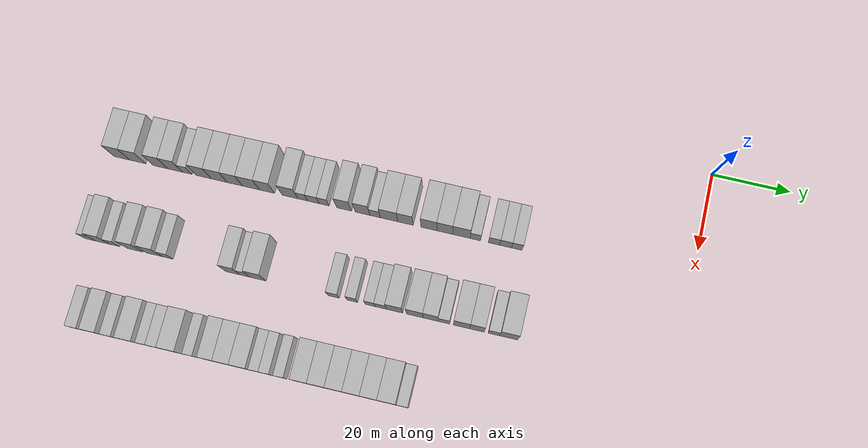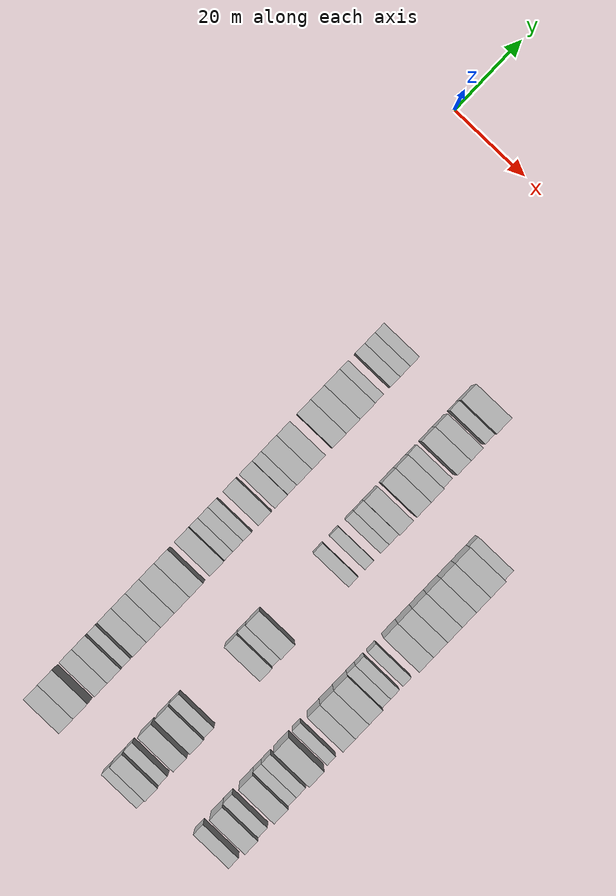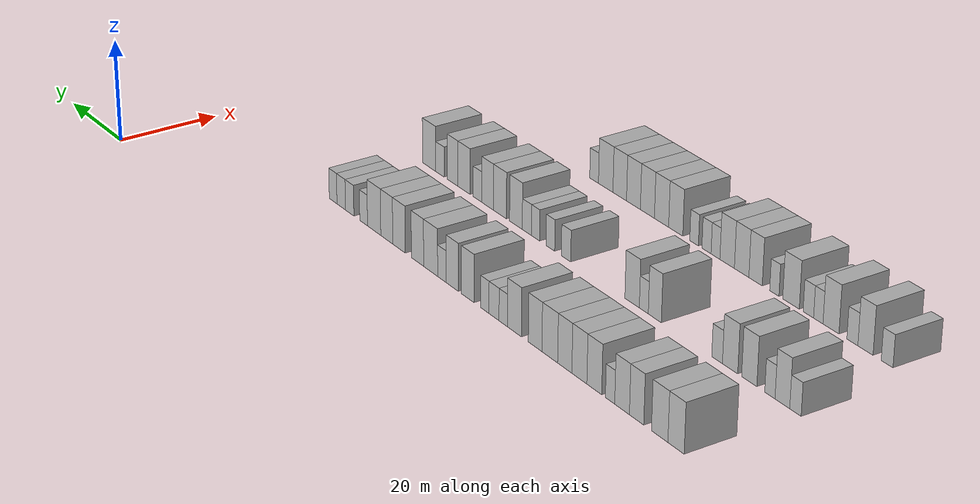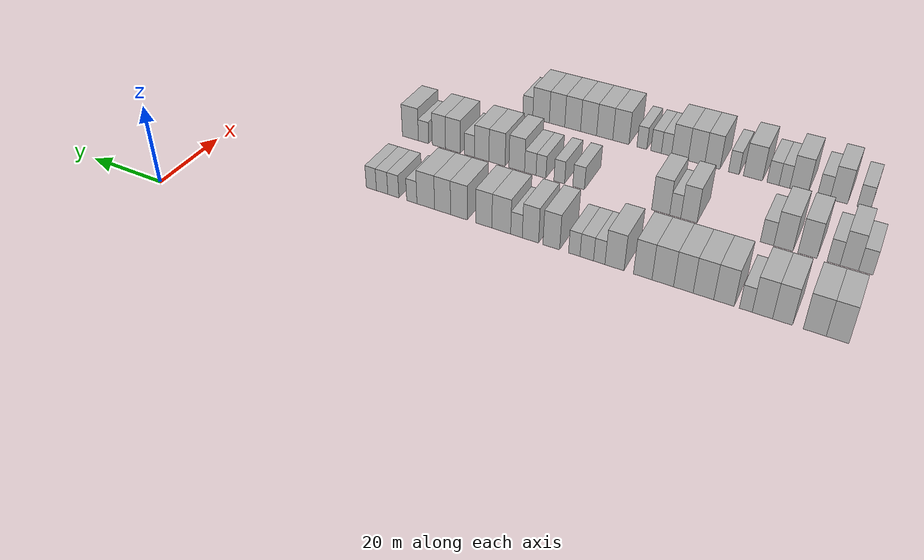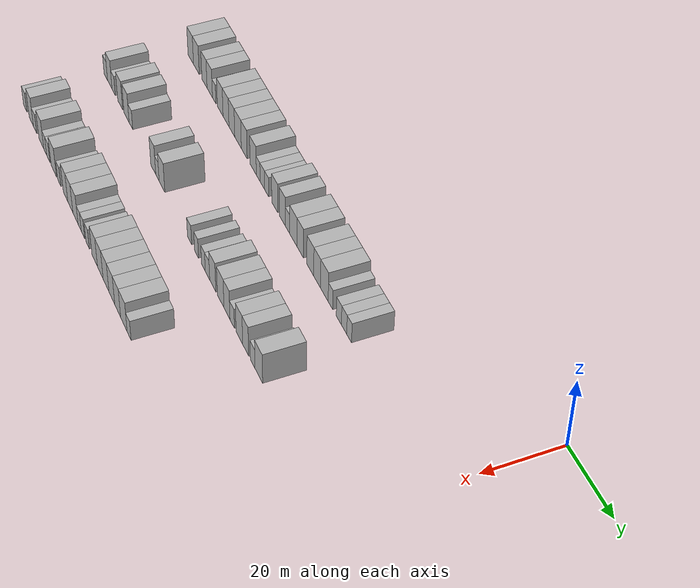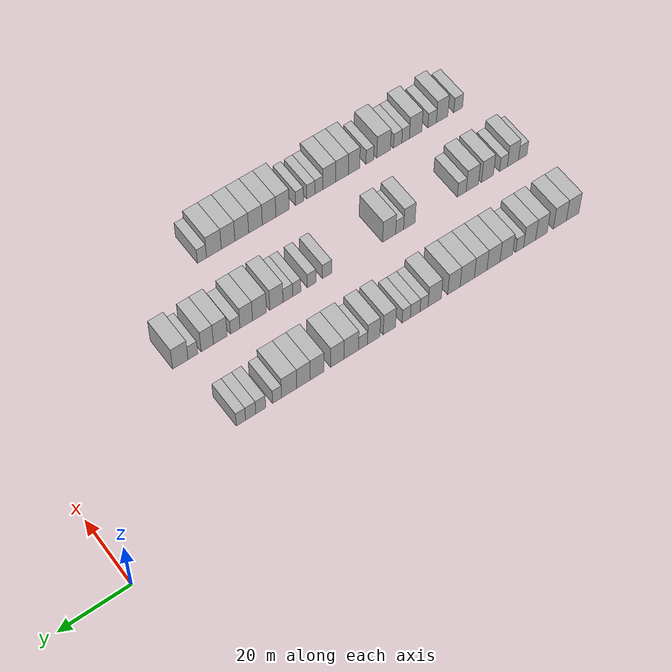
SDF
<sdf version="1.6">
 <world name="default">
  <model name="building_26">
   <static>1</static>
   <pose>25.0000 -146.1814 0 0.000000 0.000000 0.000000</pose>
   <link name="link">
    <pose>0 0 4.50 0 0 0</pose>
    <collision name="collision"><geometry><box><size>10.0000 4.1234 9.0000</size></box></geometry></collision>
    <visual name="visual">
     <cast_shadows>0</cast_shadows>
     <geometry><box><size>10.0000 4.1234 9.0000</size></box></geometry>
     <material>
      <script>
       <uri>model://HANNAS_wall/materials/scripts</uri>
       <uri>model://HANNAS_wall/materials/textures</uri>
       <name>vrc/HANNAS_wall</name>
      </script>
     </material>
    </visual>
   </link>
  </model>
  <model name="building_27">
   <static>1</static>
   <pose>25.0000 -142.0024 0 0.000000 0.000000 0.000000</pose>
   <link name="link">
    <pose>0 0 4.50 0 0 0</pose>
    <collision name="collision"><geometry><box><size>10.0000 4.2346 9.0000</size></box></geometry></collision>
    <visual name="visual">
     <cast_shadows>0</cast_shadows>
     <geometry><box><size>10.0000 4.2346 9.0000</size></box></geometry>
     <material>
      <script>
       <uri>model://HANNAS_wall/materials/scripts</uri>
       <uri>model://HANNAS_wall/materials/textures</uri>
       <name>vrc/HANNAS_wall</name>
      </script>
     </material>
    </visual>
   </link>
  </model>
  <model name="building_28">
   <static>1</static>
   <pose>25.0000 -136.0054 0 0.000000 0.000000 0.000000</pose>
   <link name="link">
    <pose>0 0 4.50 0 0 0</pose>
    <collision name="collision"><geometry><box><size>10.0000 3.7594 9.0000</size></box></geometry></collision>
    <visual name="visual">
     <cast_shadows>0</cast_shadows>
     <geometry><box><size>10.0000 3.7594 9.0000</size></box></geometry>
     <material>
      <script>
       <uri>model://HANNAS_wall/materials/scripts</uri>
       <uri>model://HANNAS_wall/materials/textures</uri>
       <name>vrc/HANNAS_wall</name>
      </script>
     </material>
    </visual>
   </link>
  </model>
  <model name="building_29">
   <static>1</static>
   <pose>25.0000 -132.1710 0 0.000000 0.000000 0.000000</pose>
   <link name="link">
    <pose>0 0 4.50 0 0 0</pose>
    <collision name="collision"><geometry><box><size>10.0000 3.9094 9.0000</size></box></geometry></collision>
    <visual name="visual">
     <cast_shadows>0</cast_shadows>
     <geometry><box><size>10.0000 3.9094 9.0000</size></box></geometry>
     <material>
      <script>
       <uri>model://HANNAS_wall/materials/scripts</uri>
       <uri>model://HANNAS_wall/materials/textures</uri>
       <name>vrc/HANNAS_wall</name>
      </script>
     </material>
    </visual>
   </link>
  </model>
  <model name="building_30">
   <static>1</static>
   <pose>25.0000 -128.9647 0 0.000000 0.000000 0.000000</pose>
   <link name="link">
    <pose>0 0 3.00 0 0 0</pose>
    <collision name="collision"><geometry><box><size>10.0000 2.5033 6.0000</size></box></geometry></collision>
    <visual name="visual">
     <cast_shadows>0</cast_shadows>
     <geometry><box><size>10.0000 2.5033 6.0000</size></box></geometry>
     <material>
      <script>
       <uri>model://HANNAS_wall/materials/scripts</uri>
       <uri>model://HANNAS_wall/materials/textures</uri>
       <name>vrc/HANNAS_wall</name>
      </script>
     </material>
    </visual>
   </link>
  </model>
  <model name="building_31">
   <static>1</static>
   <pose>25.0000 -124.6925 0 0.000000 0.000000 0.000000</pose>
   <link name="link">
    <pose>0 0 4.50 0 0 0</pose>
    <collision name="collision"><geometry><box><size>10.0000 4.0411 9.0000</size></box></geometry></collision>
    <visual name="visual">
     <cast_shadows>0</cast_shadows>
     <geometry><box><size>10.0000 4.0411 9.0000</size></box></geometry>
     <material>
      <script>
       <uri>model://HANNAS_wall/materials/scripts</uri>
       <uri>model://HANNAS_wall/materials/textures</uri>
       <name>vrc/HANNAS_wall</name>
      </script>
     </material>
    </visual>
   </link>
  </model>
  <model name="building_32">
   <static>1</static>
   <pose>25.0000 -120.5964 0 0.000000 0.000000 0.000000</pose>
   <link name="link">
    <pose>0 0 4.50 0 0 0</pose>
    <collision name="collision"><geometry><box><size>10.0000 4.1510 9.0000</size></box></geometry></collision>
    <visual name="visual">
     <cast_shadows>0</cast_shadows>
     <geometry><box><size>10.0000 4.1510 9.0000</size></box></geometry>
     <material>
      <script>
       <uri>model://HANNAS_wall/materials/scripts</uri>
       <uri>model://HANNAS_wall/materials/textures</uri>
       <name>vrc/HANNAS_wall</name>
      </script>
     </material>
    </visual>
   </link>
  </model>
  <model name="building_33">
   <static>1</static>
   <pose>25.0000 -116.5280 0 0.000000 0.000000 0.000000</pose>
   <link name="link">
    <pose>0 0 4.50 0 0 0</pose>
    <collision name="collision"><geometry><box><size>10.0000 3.9857 9.0000</size></box></geometry></collision>
    <visual name="visual">
     <cast_shadows>0</cast_shadows>
     <geometry><box><size>10.0000 3.9857 9.0000</size></box></geometry>
     <material>
      <script>
       <uri>model://HANNAS_wall/materials/scripts</uri>
       <uri>model://HANNAS_wall/materials/textures</uri>
       <name>vrc/HANNAS_wall</name>
      </script>
     </material>
    </visual>
   </link>
  </model>
  <model name="building_34">
   <static>1</static>
   <pose>25.0000 -112.2991 0 0.000000 0.000000 0.000000</pose>
   <link name="link">
    <pose>0 0 4.50 0 0 0</pose>
    <collision name="collision"><geometry><box><size>10.0000 4.4722 9.0000</size></box></geometry></collision>
    <visual name="visual">
     <cast_shadows>0</cast_shadows>
     <geometry><box><size>10.0000 4.4722 9.0000</size></box></geometry>
     <material>
      <script>
       <uri>model://HANNAS_wall/materials/scripts</uri>
       <uri>model://HANNAS_wall/materials/textures</uri>
       <name>vrc/HANNAS_wall</name>
      </script>
     </material>
    </visual>
   </link>
  </model>
  <model name="building_35">
   <static>1</static>
   <pose>25.0000 -108.1055 0 0.000000 0.000000 0.000000</pose>
   <link name="link">
    <pose>0 0 4.50 0 0 0</pose>
    <collision name="collision"><geometry><box><size>10.0000 3.9148 9.0000</size></box></geometry></collision>
    <visual name="visual">
     <cast_shadows>0</cast_shadows>
     <geometry><box><size>10.0000 3.9148 9.0000</size></box></geometry>
     <material>
      <script>
       <uri>model://HANNAS_wall/materials/scripts</uri>
       <uri>model://HANNAS_wall/materials/textures</uri>
       <name>vrc/HANNAS_wall</name>
      </script>
     </material>
    </visual>
   </link>
  </model>
  <model name="building_36">
   <static>1</static>
   <pose>25.0000 -102.0855 0 0.000000 0.000000 0.000000</pose>
   <link name="link">
    <pose>0 0 4.50 0 0 0</pose>
    <collision name="collision"><geometry><box><size>10.0000 4.1253 9.0000</size></box></geometry></collision>
    <visual name="visual">
     <cast_shadows>0</cast_shadows>
     <geometry><box><size>10.0000 4.1253 9.0000</size></box></geometry>
     <material>
      <script>
       <uri>model://HANNAS_wall/materials/scripts</uri>
       <uri>model://HANNAS_wall/materials/textures</uri>
       <name>vrc/HANNAS_wall</name>
      </script>
     </material>
    </visual>
   </link>
  </model>
  <model name="building_37">
   <static>1</static>
   <pose>25.0000 -98.7798 0 0.000000 0.000000 0.000000</pose>
   <link name="link">
    <pose>0 0 3.00 0 0 0</pose>
    <collision name="collision"><geometry><box><size>10.0000 2.4861 6.0000</size></box></geometry></collision>
    <visual name="visual">
     <cast_shadows>0</cast_shadows>
     <geometry><box><size>10.0000 2.4861 6.0000</size></box></geometry>
     <material>
      <script>
       <uri>model://HANNAS_wall/materials/scripts</uri>
       <uri>model://HANNAS_wall/materials/textures</uri>
       <name>vrc/HANNAS_wall</name>
      </script>
     </material>
    </visual>
   </link>
  </model>
  <model name="building_38">
   <static>1</static>
   <pose>25.0000 -96.0407 0 0.000000 0.000000 0.000000</pose>
   <link name="link">
    <pose>0 0 3.00 0 0 0</pose>
    <collision name="collision"><geometry><box><size>10.0000 2.9920 6.0000</size></box></geometry></collision>
    <visual name="visual">
     <cast_shadows>0</cast_shadows>
     <geometry><box><size>10.0000 2.9920 6.0000</size></box></geometry>
     <material>
      <script>
       <uri>model://HANNAS_wall/materials/scripts</uri>
       <uri>model://HANNAS_wall/materials/textures</uri>
       <name>vrc/HANNAS_wall</name>
      </script>
     </material>
    </visual>
   </link>
  </model>
  <model name="building_39">
   <static>1</static>
   <pose>25.0000 -93.2698 0 0.000000 0.000000 0.000000</pose>
   <link name="link">
    <pose>0 0 3.00 0 0 0</pose>
    <collision name="collision"><geometry><box><size>10.0000 2.5499 6.0000</size></box></geometry></collision>
    <visual name="visual">
     <cast_shadows>0</cast_shadows>
     <geometry><box><size>10.0000 2.5499 6.0000</size></box></geometry>
     <material>
      <script>
       <uri>model://HANNAS_wall/materials/scripts</uri>
       <uri>model://HANNAS_wall/materials/textures</uri>
       <name>vrc/HANNAS_wall</name>
      </script>
     </material>
    </visual>
   </link>
  </model>
  <model name="building_40">
   <static>1</static>
   <pose>25.0000 -88.0946 0 0.000000 0.000000 0.000000</pose>
   <link name="link">
    <pose>0 0 4.50 0 0 0</pose>
    <collision name="collision"><geometry><box><size>10.0000 3.8005 9.0000</size></box></geometry></collision>
    <visual name="visual">
     <cast_shadows>0</cast_shadows>
     <geometry><box><size>10.0000 3.8005 9.0000</size></box></geometry>
     <material>
      <script>
       <uri>model://HANNAS_wall/materials/scripts</uri>
       <uri>model://HANNAS_wall/materials/textures</uri>
       <name>vrc/HANNAS_wall</name>
      </script>
     </material>
    </visual>
   </link>
  </model>
  <model name="building_41">
   <static>1</static>
   <pose>25.0000 -83.3146 0 0.000000 0.000000 0.000000</pose>
   <link name="link">
    <pose>0 0 4.50 0 0 0</pose>
    <collision name="collision"><geometry><box><size>10.0000 3.7594 9.0000</size></box></geometry></collision>
    <visual name="visual">
     <cast_shadows>0</cast_shadows>
     <geometry><box><size>10.0000 3.7594 9.0000</size></box></geometry>
     <material>
      <script>
       <uri>model://HANNAS_wall/materials/scripts</uri>
       <uri>model://HANNAS_wall/materials/textures</uri>
       <name>vrc/HANNAS_wall</name>
      </script>
     </material>
    </visual>
   </link>
  </model>
  <model name="building_42">
   <static>1</static>
   <pose>25.0000 -80.0794 0 0.000000 0.000000 0.000000</pose>
   <link name="link">
    <pose>0 0 3.00 0 0 0</pose>
    <collision name="collision"><geometry><box><size>10.0000 2.7111 6.0000</size></box></geometry></collision>
    <visual name="visual">
     <cast_shadows>0</cast_shadows>
     <geometry><box><size>10.0000 2.7111 6.0000</size></box></geometry>
     <material>
      <script>
       <uri>model://HANNAS_wall/materials/scripts</uri>
       <uri>model://HANNAS_wall/materials/textures</uri>
       <name>vrc/HANNAS_wall</name>
      </script>
     </material>
    </visual>
   </link>
  </model>
  <model name="building_43">
   <static>1</static>
   <pose>25.0000 -76.5012 0 0.000000 0.000000 0.000000</pose>
   <link name="link">
    <pose>0 0 4.50 0 0 0</pose>
    <collision name="collision"><geometry><box><size>10.0000 4.4454 9.0000</size></box></geometry></collision>
    <visual name="visual">
     <cast_shadows>0</cast_shadows>
     <geometry><box><size>10.0000 4.4454 9.0000</size></box></geometry>
     <material>
      <script>
       <uri>model://HANNAS_wall/materials/scripts</uri>
       <uri>model://HANNAS_wall/materials/textures</uri>
       <name>vrc/HANNAS_wall</name>
      </script>
     </material>
    </visual>
   </link>
  </model>
  <model name="building_44">
   <static>1</static>
   <pose>25.0000 -72.3052 0 0.000000 0.000000 0.000000</pose>
   <link name="link">
    <pose>0 0 4.50 0 0 0</pose>
    <collision name="collision"><geometry><box><size>10.0000 3.9466 9.0000</size></box></geometry></collision>
    <visual name="visual">
     <cast_shadows>0</cast_shadows>
     <geometry><box><size>10.0000 3.9466 9.0000</size></box></geometry>
     <material>
      <script>
       <uri>model://HANNAS_wall/materials/scripts</uri>
       <uri>model://HANNAS_wall/materials/textures</uri>
       <name>vrc/HANNAS_wall</name>
      </script>
     </material>
    </visual>
   </link>
  </model>
  <model name="building_45">
   <static>1</static>
   <pose>25.0000 -66.2888 0 0.000000 0.000000 0.000000</pose>
   <link name="link">
    <pose>0 0 4.50 0 0 0</pose>
    <collision name="collision"><geometry><box><size>10.0000 4.0862 9.0000</size></box></geometry></collision>
    <visual name="visual">
     <cast_shadows>0</cast_shadows>
     <geometry><box><size>10.0000 4.0862 9.0000</size></box></geometry>
     <material>
      <script>
       <uri>model://HANNAS_wall/materials/scripts</uri>
       <uri>model://HANNAS_wall/materials/textures</uri>
       <name>vrc/HANNAS_wall</name>
      </script>
     </material>
    </visual>
   </link>
  </model>
  <model name="building_46">
   <static>1</static>
   <pose>25.0000 -62.2488 0 0.000000 0.000000 0.000000</pose>
   <link name="link">
    <pose>0 0 4.50 0 0 0</pose>
    <collision name="collision"><geometry><box><size>10.0000 3.9938 9.0000</size></box></geometry></collision>
    <visual name="visual">
     <cast_shadows>0</cast_shadows>
     <geometry><box><size>10.0000 3.9938 9.0000</size></box></geometry>
     <material>
      <script>
       <uri>model://HANNAS_wall/materials/scripts</uri>
       <uri>model://HANNAS_wall/materials/textures</uri>
       <name>vrc/HANNAS_wall</name>
      </script>
     </material>
    </visual>
   </link>
  </model>
  <model name="building_47">
   <static>1</static>
   <pose>25.0000 -58.0142 0 0.000000 0.000000 0.000000</pose>
   <link name="link">
    <pose>0 0 4.50 0 0 0</pose>
    <collision name="collision"><geometry><box><size>10.0000 4.4755 9.0000</size></box></geometry></collision>
    <visual name="visual">
     <cast_shadows>0</cast_shadows>
     <geometry><box><size>10.0000 4.4755 9.0000</size></box></geometry>
     <material>
      <script>
       <uri>model://HANNAS_wall/materials/scripts</uri>
       <uri>model://HANNAS_wall/materials/textures</uri>
       <name>vrc/HANNAS_wall</name>
      </script>
     </material>
    </visual>
   </link>
  </model>
  <model name="building_48">
   <static>1</static>
   <pose>25.0000 -54.4579 0 0.000000 0.000000 0.000000</pose>
   <link name="link">
    <pose>0 0 3.00 0 0 0</pose>
    <collision name="collision"><geometry><box><size>10.0000 2.6370 6.0000</size></box></geometry></collision>
    <visual name="visual">
     <cast_shadows>0</cast_shadows>
     <geometry><box><size>10.0000 2.6370 6.0000</size></box></geometry>
     <material>
      <script>
       <uri>model://HANNAS_wall/materials/scripts</uri>
       <uri>model://HANNAS_wall/materials/textures</uri>
       <name>vrc/HANNAS_wall</name>
      </script>
     </material>
    </visual>
   </link>
  </model>
  <model name="building_49">
   <static>1</static>
   <pose>25.0000 -49.6964 0 0.000000 0.000000 0.000000</pose>
   <link name="link">
    <pose>0 0 3.00 0 0 0</pose>
    <collision name="collision"><geometry><box><size>10.0000 2.8860 6.0000</size></box></geometry></collision>
    <visual name="visual">
     <cast_shadows>0</cast_shadows>
     <geometry><box><size>10.0000 2.8860 6.0000</size></box></geometry>
     <material>
      <script>
       <uri>model://HANNAS_wall/materials/scripts</uri>
       <uri>model://HANNAS_wall/materials/textures</uri>
       <name>vrc/HANNAS_wall</name>
      </script>
     </material>
    </visual>
   </link>
  </model>
  <model name="building_50">
   <static>1</static>
   <pose>25.0000 -46.7628 0 0.000000 0.000000 0.000000</pose>
   <link name="link">
    <pose>0 0 3.00 0 0 0</pose>
    <collision name="collision"><geometry><box><size>10.0000 2.9812 6.0000</size></box></geometry></collision>
    <visual name="visual">
     <cast_shadows>0</cast_shadows>
     <geometry><box><size>10.0000 2.9812 6.0000</size></box></geometry>
     <material>
      <script>
       <uri>model://HANNAS_wall/materials/scripts</uri>
       <uri>model://HANNAS_wall/materials/textures</uri>
       <name>vrc/HANNAS_wall</name>
      </script>
     </material>
    </visual>
   </link>
  </model>
  <model name="building_51">
   <static>1</static>
   <pose>25.0000 -43.9265 0 0.000000 0.000000 0.000000</pose>
   <link name="link">
    <pose>0 0 3.00 0 0 0</pose>
    <collision name="collision"><geometry><box><size>10.0000 2.6912 6.0000</size></box></geometry></collision>
    <visual name="visual">
     <cast_shadows>0</cast_shadows>
     <geometry><box><size>10.0000 2.6912 6.0000</size></box></geometry>
     <material>
      <script>
       <uri>model://HANNAS_wall/materials/scripts</uri>
       <uri>model://HANNAS_wall/materials/textures</uri>
       <name>vrc/HANNAS_wall</name>
      </script>
     </material>
    </visual>
   </link>
  </model>
  <model name="building_143">
   <static>1</static>
   <pose>47.0000 -147.5275 0 0.000000 0.000000 0.000000</pose>
   <link name="link">
    <pose>0 0 3.00 0 0 0</pose>
    <collision name="collision"><geometry><box><size>10.0000 2.8146 6.0000</size></box></geometry></collision>
    <visual name="visual">
     <cast_shadows>0</cast_shadows>
     <geometry><box><size>10.0000 2.8146 6.0000</size></box></geometry>
     <material>
      <script>
       <uri>model://HANNAS_wall/materials/scripts</uri>
       <uri>model://HANNAS_wall/materials/textures</uri>
       <name>vrc/HANNAS_wall</name>
      </script>
     </material>
    </visual>
   </link>
  </model>
  <model name="building_144">
   <static>1</static>
   <pose>47.0000 -144.2907 0 0.000000 0.000000 0.000000</pose>
   <link name="link">
    <pose>0 0 4.50 0 0 0</pose>
    <collision name="collision"><geometry><box><size>10.0000 3.6590 9.0000</size></box></geometry></collision>
    <visual name="visual">
     <cast_shadows>0</cast_shadows>
     <geometry><box><size>10.0000 3.6590 9.0000</size></box></geometry>
     <material>
      <script>
       <uri>model://HANNAS_wall/materials/scripts</uri>
       <uri>model://HANNAS_wall/materials/textures</uri>
       <name>vrc/HANNAS_wall</name>
      </script>
     </material>
    </visual>
   </link>
  </model>
  <model name="building_145">
   <static>1</static>
   <pose>47.0000 -141.1688 0 0.000000 0.000000 0.000000</pose>
   <link name="link">
    <pose>0 0 3.00 0 0 0</pose>
    <collision name="collision"><geometry><box><size>10.0000 2.5847 6.0000</size></box></geometry></collision>
    <visual name="visual">
     <cast_shadows>0</cast_shadows>
     <geometry><box><size>10.0000 2.5847 6.0000</size></box></geometry>
     <material>
      <script>
       <uri>model://HANNAS_wall/materials/scripts</uri>
       <uri>model://HANNAS_wall/materials/textures</uri>
       <name>vrc/HANNAS_wall</name>
      </script>
     </material>
    </visual>
   </link>
  </model>
  <model name="building_146">
   <static>1</static>
   <pose>47.0000 -135.9255 0 0.000000 0.000000 0.000000</pose>
   <link name="link">
    <pose>0 0 4.50 0 0 0</pose>
    <collision name="collision"><geometry><box><size>10.0000 3.9020 9.0000</size></box></geometry></collision>
    <visual name="visual">
     <cast_shadows>0</cast_shadows>
     <geometry><box><size>10.0000 3.9020 9.0000</size></box></geometry>
     <material>
      <script>
       <uri>model://HANNAS_wall/materials/scripts</uri>
       <uri>model://HANNAS_wall/materials/textures</uri>
       <name>vrc/HANNAS_wall</name>
      </script>
     </material>
    </visual>
   </link>
  </model>
  <model name="building_147">
   <static>1</static>
   <pose>47.0000 -130.9815 0 0.000000 0.000000 0.000000</pose>
   <link name="link">
    <pose>0 0 4.50 0 0 0</pose>
    <collision name="collision"><geometry><box><size>10.0000 3.9860 9.0000</size></box></geometry></collision>
    <visual name="visual">
     <cast_shadows>0</cast_shadows>
     <geometry><box><size>10.0000 3.9860 9.0000</size></box></geometry>
     <material>
      <script>
       <uri>model://HANNAS_wall/materials/scripts</uri>
       <uri>model://HANNAS_wall/materials/textures</uri>
       <name>vrc/HANNAS_wall</name>
      </script>
     </material>
    </visual>
   </link>
  </model>
  <model name="building_148">
   <static>1</static>
   <pose>47.0000 -127.5815 0 0.000000 0.000000 0.000000</pose>
   <link name="link">
    <pose>0 0 3.00 0 0 0</pose>
    <collision name="collision"><geometry><box><size>10.0000 2.8141 6.0000</size></box></geometry></collision>
    <visual name="visual">
     <cast_shadows>0</cast_shadows>
     <geometry><box><size>10.0000 2.8141 6.0000</size></box></geometry>
     <material>
      <script>
       <uri>model://HANNAS_wall/materials/scripts</uri>
       <uri>model://HANNAS_wall/materials/textures</uri>
       <name>vrc/HANNAS_wall</name>
      </script>
     </material>
    </visual>
   </link>
  </model>
  <model name="building_149">
   <static>1</static>
   <pose>47.0000 -110.7443 0 0.000000 0.000000 0.000000</pose>
   <link name="link">
    <pose>0 0 4.50 0 0 0</pose>
    <collision name="collision"><geometry><box><size>10.0000 3.6201 9.0000</size></box></geometry></collision>
    <visual name="visual">
     <cast_shadows>0</cast_shadows>
     <geometry><box><size>10.0000 3.6201 9.0000</size></box></geometry>
     <material>
      <script>
       <uri>model://HANNAS_wall/materials/scripts</uri>
       <uri>model://HANNAS_wall/materials/textures</uri>
       <name>vrc/HANNAS_wall</name>
      </script>
     </material>
    </visual>
   </link>
  </model>
  <model name="building_150">
   <static>1</static>
   <pose>47.0000 -107.6758 0 0.000000 0.000000 0.000000</pose>
   <link name="link">
    <pose>0 0 3.00 0 0 0</pose>
    <collision name="collision"><geometry><box><size>10.0000 2.5170 6.0000</size></box></geometry></collision>
    <visual name="visual">
     <cast_shadows>0</cast_shadows>
     <geometry><box><size>10.0000 2.5170 6.0000</size></box></geometry>
     <material>
      <script>
       <uri>model://HANNAS_wall/materials/scripts</uri>
       <uri>model://HANNAS_wall/materials/textures</uri>
       <name>vrc/HANNAS_wall</name>
      </script>
     </material>
    </visual>
   </link>
  </model>
  <model name="building_151">
   <static>1</static>
   <pose>47.0000 -104.3683 0 0.000000 0.000000 0.000000</pose>
   <link name="link">
    <pose>0 0 4.50 0 0 0</pose>
    <collision name="collision"><geometry><box><size>10.0000 4.0980 9.0000</size></box></geometry></collision>
    <visual name="visual">
     <cast_shadows>0</cast_shadows>
     <geometry><box><size>10.0000 4.0980 9.0000</size></box></geometry>
     <material>
      <script>
       <uri>model://HANNAS_wall/materials/scripts</uri>
       <uri>model://HANNAS_wall/materials/textures</uri>
       <name>vrc/HANNAS_wall</name>
      </script>
     </material>
    </visual>
   </link>
  </model>
  <model name="building_152">
   <static>1</static>
   <pose>47.0000 -85.0663 0 0.000000 0.000000 0.000000</pose>
   <link name="link">
    <pose>0 0 3.00 0 0 0</pose>
    <collision name="collision"><geometry><box><size>10.0000 2.8353 6.0000</size></box></geometry></collision>
    <visual name="visual">
     <cast_shadows>0</cast_shadows>
     <geometry><box><size>10.0000 2.8353 6.0000</size></box></geometry>
     <material>
      <script>
       <uri>model://HANNAS_wall/materials/scripts</uri>
       <uri>model://HANNAS_wall/materials/textures</uri>
       <name>vrc/HANNAS_wall</name>
      </script>
     </material>
    </visual>
   </link>
  </model>
  <model name="building_153">
   <static>1</static>
   <pose>47.0000 -80.3311 0 0.000000 0.000000 0.000000</pose>
   <link name="link">
    <pose>0 0 3.00 0 0 0</pose>
    <collision name="collision"><geometry><box><size>10.0000 2.6350 6.0000</size></box></geometry></collision>
    <visual name="visual">
     <cast_shadows>0</cast_shadows>
     <geometry><box><size>10.0000 2.6350 6.0000</size></box></geometry>
     <material>
      <script>
       <uri>model://HANNAS_wall/materials/scripts</uri>
       <uri>model://HANNAS_wall/materials/textures</uri>
       <name>vrc/HANNAS_wall</name>
      </script>
     </material>
    </visual>
   </link>
  </model>
  <model name="building_154">
   <static>1</static>
   <pose>47.0000 -75.7713 0 0.000000 0.000000 0.000000</pose>
   <link name="link">
    <pose>0 0 3.00 0 0 0</pose>
    <collision name="collision"><geometry><box><size>10.0000 2.4846 6.0000</size></box></geometry></collision>
    <visual name="visual">
     <cast_shadows>0</cast_shadows>
     <geometry><box><size>10.0000 2.4846 6.0000</size></box></geometry>
     <material>
      <script>
       <uri>model://HANNAS_wall/materials/scripts</uri>
       <uri>model://HANNAS_wall/materials/textures</uri>
       <name>vrc/HANNAS_wall</name>
      </script>
     </material>
    </visual>
   </link>
  </model>
  <model name="building_155">
   <static>1</static>
   <pose>47.0000 -73.0805 0 0.000000 0.000000 0.000000</pose>
   <link name="link">
    <pose>0 0 3.00 0 0 0</pose>
    <collision name="collision"><geometry><box><size>10.0000 2.8969 6.0000</size></box></geometry></collision>
    <visual name="visual">
     <cast_shadows>0</cast_shadows>
     <geometry><box><size>10.0000 2.8969 6.0000</size></box></geometry>
     <material>
      <script>
       <uri>model://HANNAS_wall/materials/scripts</uri>
       <uri>model://HANNAS_wall/materials/textures</uri>
       <name>vrc/HANNAS_wall</name>
      </script>
     </material>
    </visual>
   </link>
  </model>
  <model name="building_156">
   <static>1</static>
   <pose>47.0000 -69.6291 0 0.000000 0.000000 0.000000</pose>
   <link name="link">
    <pose>0 0 4.50 0 0 0</pose>
    <collision name="collision"><geometry><box><size>10.0000 4.0059 9.0000</size></box></geometry></collision>
    <visual name="visual">
     <cast_shadows>0</cast_shadows>
     <geometry><box><size>10.0000 4.0059 9.0000</size></box></geometry>
     <material>
      <script>
       <uri>model://HANNAS_wall/materials/scripts</uri>
       <uri>model://HANNAS_wall/materials/textures</uri>
       <name>vrc/HANNAS_wall</name>
      </script>
     </material>
    </visual>
   </link>
  </model>
  <model name="building_157">
   <static>1</static>
   <pose>47.0000 -64.5308 0 0.000000 0.000000 0.000000</pose>
   <link name="link">
    <pose>0 0 4.50 0 0 0</pose>
    <collision name="collision"><geometry><box><size>10.0000 4.1907 9.0000</size></box></geometry></collision>
    <visual name="visual">
     <cast_shadows>0</cast_shadows>
     <geometry><box><size>10.0000 4.1907 9.0000</size></box></geometry>
     <material>
      <script>
       <uri>model://HANNAS_wall/materials/scripts</uri>
       <uri>model://HANNAS_wall/materials/textures</uri>
       <name>vrc/HANNAS_wall</name>
      </script>
     </material>
    </visual>
   </link>
  </model>
  <model name="building_158">
   <static>1</static>
   <pose>47.0000 -60.5631 0 0.000000 0.000000 0.000000</pose>
   <link name="link">
    <pose>0 0 4.50 0 0 0</pose>
    <collision name="collision"><geometry><box><size>10.0000 3.7449 9.0000</size></box></geometry></collision>
    <visual name="visual">
     <cast_shadows>0</cast_shadows>
     <geometry><box><size>10.0000 3.7449 9.0000</size></box></geometry>
     <material>
      <script>
       <uri>model://HANNAS_wall/materials/scripts</uri>
       <uri>model://HANNAS_wall/materials/textures</uri>
       <name>vrc/HANNAS_wall</name>
      </script>
     </material>
    </visual>
   </link>
  </model>
  <model name="building_159">
   <static>1</static>
   <pose>47.0000 -57.2812 0 0.000000 0.000000 0.000000</pose>
   <link name="link">
    <pose>0 0 3.00 0 0 0</pose>
    <collision name="collision"><geometry><box><size>10.0000 2.8188 6.0000</size></box></geometry></collision>
    <visual name="visual">
     <cast_shadows>0</cast_shadows>
     <geometry><box><size>10.0000 2.8188 6.0000</size></box></geometry>
     <material>
      <script>
       <uri>model://HANNAS_wall/materials/scripts</uri>
       <uri>model://HANNAS_wall/materials/textures</uri>
       <name>vrc/HANNAS_wall</name>
      </script>
     </material>
    </visual>
   </link>
  </model>
  <model name="building_160">
   <static>1</static>
   <pose>47.0000 -52.8468 0 0.000000 0.000000 0.000000</pose>
   <link name="link">
    <pose>0 0 4.50 0 0 0</pose>
    <collision name="collision"><geometry><box><size>10.0000 4.0501 9.0000</size></box></geometry></collision>
    <visual name="visual">
     <cast_shadows>0</cast_shadows>
     <geometry><box><size>10.0000 4.0501 9.0000</size></box></geometry>
     <material>
      <script>
       <uri>model://HANNAS_wall/materials/scripts</uri>
       <uri>model://HANNAS_wall/materials/textures</uri>
       <name>vrc/HANNAS_wall</name>
      </script>
     </material>
    </visual>
   </link>
  </model>
  <model name="building_161">
   <static>1</static>
   <pose>47.0000 -49.0162 0 0.000000 0.000000 0.000000</pose>
   <link name="link">
    <pose>0 0 4.50 0 0 0</pose>
    <collision name="collision"><geometry><box><size>10.0000 3.6110 9.0000</size></box></geometry></collision>
    <visual name="visual">
     <cast_shadows>0</cast_shadows>
     <geometry><box><size>10.0000 3.6110 9.0000</size></box></geometry>
     <material>
      <script>
       <uri>model://HANNAS_wall/materials/scripts</uri>
       <uri>model://HANNAS_wall/materials/textures</uri>
       <name>vrc/HANNAS_wall</name>
      </script>
     </material>
    </visual>
   </link>
  </model>
  <model name="building_162">
   <static>1</static>
   <pose>47.0000 -44.7890 0 0.000000 0.000000 0.000000</pose>
   <link name="link">
    <pose>0 0 3.00 0 0 0</pose>
    <collision name="collision"><geometry><box><size>10.0000 2.8435 6.0000</size></box></geometry></collision>
    <visual name="visual">
     <cast_shadows>0</cast_shadows>
     <geometry><box><size>10.0000 2.8435 6.0000</size></box></geometry>
     <material>
      <script>
       <uri>model://HANNAS_wall/materials/scripts</uri>
       <uri>model://HANNAS_wall/materials/textures</uri>
       <name>vrc/HANNAS_wall</name>
      </script>
     </material>
    </visual>
   </link>
  </model>
  <model name="building_163">
   <static>1</static>
   <pose>47.0000 -41.1206 0 0.000000 0.000000 0.000000</pose>
   <link name="link">
    <pose>0 0 4.50 0 0 0</pose>
    <collision name="collision"><geometry><box><size>10.0000 4.4934 9.0000</size></box></geometry></collision>
    <visual name="visual">
     <cast_shadows>0</cast_shadows>
     <geometry><box><size>10.0000 4.4934 9.0000</size></box></geometry>
     <material>
      <script>
       <uri>model://HANNAS_wall/materials/scripts</uri>
       <uri>model://HANNAS_wall/materials/textures</uri>
       <name>vrc/HANNAS_wall</name>
      </script>
     </material>
    </visual>
   </link>
  </model>
  <model name="building_251">
   <static>1</static>
   <pose>69.0000 -143.3747 0 0.000000 0.000000 0.000000</pose>
   <link name="link">
    <pose>0 0 3.00 0 0 0</pose>
    <collision name="collision"><geometry><box><size>10.0000 2.8900 6.0000</size></box></geometry></collision>
    <visual name="visual">
     <cast_shadows>0</cast_shadows>
     <geometry><box><size>10.0000 2.8900 6.0000</size></box></geometry>
     <material>
      <script>
       <uri>model://HANNAS_wall/materials/scripts</uri>
       <uri>model://HANNAS_wall/materials/textures</uri>
       <name>vrc/HANNAS_wall</name>
      </script>
     </material>
    </visual>
   </link>
  </model>
  <model name="building_252">
   <static>1</static>
   <pose>69.0000 -138.0372 0 0.000000 0.000000 0.000000</pose>
   <link name="link">
    <pose>0 0 4.50 0 0 0</pose>
    <collision name="collision"><geometry><box><size>10.0000 3.7849 9.0000</size></box></geometry></collision>
    <visual name="visual">
     <cast_shadows>0</cast_shadows>
     <geometry><box><size>10.0000 3.7849 9.0000</size></box></geometry>
     <material>
      <script>
       <uri>model://HANNAS_wall/materials/scripts</uri>
       <uri>model://HANNAS_wall/materials/textures</uri>
       <name>vrc/HANNAS_wall</name>
      </script>
     </material>
    </visual>
   </link>
  </model>
  <model name="building_253">
   <static>1</static>
   <pose>69.0000 -134.7586 0 0.000000 0.000000 0.000000</pose>
   <link name="link">
    <pose>0 0 3.00 0 0 0</pose>
    <collision name="collision"><geometry><box><size>10.0000 2.7722 6.0000</size></box></geometry></collision>
    <visual name="visual">
     <cast_shadows>0</cast_shadows>
     <geometry><box><size>10.0000 2.7722 6.0000</size></box></geometry>
     <material>
      <script>
       <uri>model://HANNAS_wall/materials/scripts</uri>
       <uri>model://HANNAS_wall/materials/textures</uri>
       <name>vrc/HANNAS_wall</name>
      </script>
     </material>
    </visual>
   </link>
  </model>
  <model name="building_254">
   <static>1</static>
   <pose>69.0000 -129.3267 0 0.000000 0.000000 0.000000</pose>
   <link name="link">
    <pose>0 0 4.50 0 0 0</pose>
    <collision name="collision"><geometry><box><size>10.0000 4.0915 9.0000</size></box></geometry></collision>
    <visual name="visual">
     <cast_shadows>0</cast_shadows>
     <geometry><box><size>10.0000 4.0915 9.0000</size></box></geometry>
     <material>
      <script>
       <uri>model://HANNAS_wall/materials/scripts</uri>
       <uri>model://HANNAS_wall/materials/textures</uri>
       <name>vrc/HANNAS_wall</name>
      </script>
     </material>
    </visual>
   </link>
  </model>
  <model name="building_255">
   <static>1</static>
   <pose>69.0000 -126.0670 0 0.000000 0.000000 0.000000</pose>
   <link name="link">
    <pose>0 0 3.00 0 0 0</pose>
    <collision name="collision"><geometry><box><size>10.0000 2.4280 6.0000</size></box></geometry></collision>
    <visual name="visual">
     <cast_shadows>0</cast_shadows>
     <geometry><box><size>10.0000 2.4280 6.0000</size></box></geometry>
     <material>
      <script>
       <uri>model://HANNAS_wall/materials/scripts</uri>
       <uri>model://HANNAS_wall/materials/textures</uri>
       <name>vrc/HANNAS_wall</name>
      </script>
     </material>
    </visual>
   </link>
  </model>
  <model name="building_256">
   <static>1</static>
   <pose>69.0000 -123.4854 0 0.000000 0.000000 0.000000</pose>
   <link name="link">
    <pose>0 0 3.00 0 0 0</pose>
    <collision name="collision"><geometry><box><size>10.0000 2.7351 6.0000</size></box></geometry></collision>
    <visual name="visual">
     <cast_shadows>0</cast_shadows>
     <geometry><box><size>10.0000 2.7351 6.0000</size></box></geometry>
     <material>
      <script>
       <uri>model://HANNAS_wall/materials/scripts</uri>
       <uri>model://HANNAS_wall/materials/textures</uri>
       <name>vrc/HANNAS_wall</name>
      </script>
     </material>
    </visual>
   </link>
  </model>
  <model name="building_257">
   <static>1</static>
   <pose>69.0000 -118.9249 0 0.000000 0.000000 0.000000</pose>
   <link name="link">
    <pose>0 0 4.50 0 0 0</pose>
    <collision name="collision"><geometry><box><size>10.0000 4.3860 9.0000</size></box></geometry></collision>
    <visual name="visual">
     <cast_shadows>0</cast_shadows>
     <geometry><box><size>10.0000 4.3860 9.0000</size></box></geometry>
     <material>
      <script>
       <uri>model://HANNAS_wall/materials/scripts</uri>
       <uri>model://HANNAS_wall/materials/textures</uri>
       <name>vrc/HANNAS_wall</name>
      </script>
     </material>
    </visual>
   </link>
  </model>
  <model name="building_258">
   <static>1</static>
   <pose>69.0000 -114.4869 0 0.000000 0.000000 0.000000</pose>
   <link name="link">
    <pose>0 0 3.00 0 0 0</pose>
    <collision name="collision"><geometry><box><size>10.0000 2.4900 6.0000</size></box></geometry></collision>
    <visual name="visual">
     <cast_shadows>0</cast_shadows>
     <geometry><box><size>10.0000 2.4900 6.0000</size></box></geometry>
     <material>
      <script>
       <uri>model://HANNAS_wall/materials/scripts</uri>
       <uri>model://HANNAS_wall/materials/textures</uri>
       <name>vrc/HANNAS_wall</name>
      </script>
     </material>
    </visual>
   </link>
  </model>
  <model name="building_259">
   <static>1</static>
   <pose>69.0000 -109.4154 0 0.000000 0.000000 0.000000</pose>
   <link name="link">
    <pose>0 0 4.50 0 0 0</pose>
    <collision name="collision"><geometry><box><size>10.0000 3.6532 9.0000</size></box></geometry></collision>
    <visual name="visual">
     <cast_shadows>0</cast_shadows>
     <geometry><box><size>10.0000 3.6532 9.0000</size></box></geometry>
     <material>
      <script>
       <uri>model://HANNAS_wall/materials/scripts</uri>
       <uri>model://HANNAS_wall/materials/textures</uri>
       <name>vrc/HANNAS_wall</name>
      </script>
     </material>
    </visual>
   </link>
  </model>
  <model name="building_260">
   <static>1</static>
   <pose>69.0000 -105.5943 0 0.000000 0.000000 0.000000</pose>
   <link name="link">
    <pose>0 0 4.50 0 0 0</pose>
    <collision name="collision"><geometry><box><size>10.0000 3.9890 9.0000</size></box></geometry></collision>
    <visual name="visual">
     <cast_shadows>0</cast_shadows>
     <geometry><box><size>10.0000 3.9890 9.0000</size></box></geometry>
     <material>
      <script>
       <uri>model://HANNAS_wall/materials/scripts</uri>
       <uri>model://HANNAS_wall/materials/textures</uri>
       <name>vrc/HANNAS_wall</name>
      </script>
     </material>
    </visual>
   </link>
  </model>
  <model name="building_261">
   <static>1</static>
   <pose>69.0000 -101.5753 0 0.000000 0.000000 0.000000</pose>
   <link name="link">
    <pose>0 0 4.50 0 0 0</pose>
    <collision name="collision"><geometry><box><size>10.0000 4.0489 9.0000</size></box></geometry></collision>
    <visual name="visual">
     <cast_shadows>0</cast_shadows>
     <geometry><box><size>10.0000 4.0489 9.0000</size></box></geometry>
     <material>
      <script>
       <uri>model://HANNAS_wall/materials/scripts</uri>
       <uri>model://HANNAS_wall/materials/textures</uri>
       <name>vrc/HANNAS_wall</name>
      </script>
     </material>
    </visual>
   </link>
  </model>
  <model name="building_262">
   <static>1</static>
   <pose>69.0000 -98.3066 0 0.000000 0.000000 0.000000</pose>
   <link name="link">
    <pose>0 0 3.00 0 0 0</pose>
    <collision name="collision"><geometry><box><size>10.0000 2.4885 6.0000</size></box></geometry></collision>
    <visual name="visual">
     <cast_shadows>0</cast_shadows>
     <geometry><box><size>10.0000 2.4885 6.0000</size></box></geometry>
     <material>
      <script>
       <uri>model://HANNAS_wall/materials/scripts</uri>
       <uri>model://HANNAS_wall/materials/textures</uri>
       <name>vrc/HANNAS_wall</name>
      </script>
     </material>
    </visual>
   </link>
  </model>
  <model name="building_263">
   <static>1</static>
   <pose>69.0000 -95.7613 0 0.000000 0.000000 0.000000</pose>
   <link name="link">
    <pose>0 0 3.00 0 0 0</pose>
    <collision name="collision"><geometry><box><size>10.0000 2.6020 6.0000</size></box></geometry></collision>
    <visual name="visual">
     <cast_shadows>0</cast_shadows>
     <geometry><box><size>10.0000 2.6020 6.0000</size></box></geometry>
     <material>
      <script>
       <uri>model://HANNAS_wall/materials/scripts</uri>
       <uri>model://HANNAS_wall/materials/textures</uri>
       <name>vrc/HANNAS_wall</name>
      </script>
     </material>
    </visual>
   </link>
  </model>
  <model name="building_264">
   <static>1</static>
   <pose>69.0000 -92.2121 0 0.000000 0.000000 0.000000</pose>
   <link name="link">
    <pose>0 0 3.00 0 0 0</pose>
    <collision name="collision"><geometry><box><size>10.0000 2.4965 6.0000</size></box></geometry></collision>
    <visual name="visual">
     <cast_shadows>0</cast_shadows>
     <geometry><box><size>10.0000 2.4965 6.0000</size></box></geometry>
     <material>
      <script>
       <uri>model://HANNAS_wall/materials/scripts</uri>
       <uri>model://HANNAS_wall/materials/textures</uri>
       <name>vrc/HANNAS_wall</name>
      </script>
     </material>
    </visual>
   </link>
  </model>
  <model name="building_265">
   <static>1</static>
   <pose>69.0000 -86.8926 0 0.000000 0.000000 0.000000</pose>
   <link name="link">
    <pose>0 0 4.50 0 0 0</pose>
    <collision name="collision"><geometry><box><size>10.0000 4.1425 9.0000</size></box></geometry></collision>
    <visual name="visual">
     <cast_shadows>0</cast_shadows>
     <geometry><box><size>10.0000 4.1425 9.0000</size></box></geometry>
     <material>
      <script>
       <uri>model://HANNAS_wall/materials/scripts</uri>
       <uri>model://HANNAS_wall/materials/textures</uri>
       <name>vrc/HANNAS_wall</name>
      </script>
     </material>
    </visual>
   </link>
  </model>
  <model name="building_266">
   <static>1</static>
   <pose>69.0000 -82.7222 0 0.000000 0.000000 0.000000</pose>
   <link name="link">
    <pose>0 0 4.50 0 0 0</pose>
    <collision name="collision"><geometry><box><size>10.0000 4.1983 9.0000</size></box></geometry></collision>
    <visual name="visual">
     <cast_shadows>0</cast_shadows>
     <geometry><box><size>10.0000 4.1983 9.0000</size></box></geometry>
     <material>
      <script>
       <uri>model://HANNAS_wall/materials/scripts</uri>
       <uri>model://HANNAS_wall/materials/textures</uri>
       <name>vrc/HANNAS_wall</name>
      </script>
     </material>
    </visual>
   </link>
  </model>
  <model name="building_267">
   <static>1</static>
   <pose>69.0000 -78.5198 0 0.000000 0.000000 0.000000</pose>
   <link name="link">
    <pose>0 0 4.50 0 0 0</pose>
    <collision name="collision"><geometry><box><size>10.0000 4.2065 9.0000</size></box></geometry></collision>
    <visual name="visual">
     <cast_shadows>0</cast_shadows>
     <geometry><box><size>10.0000 4.2065 9.0000</size></box></geometry>
     <material>
      <script>
       <uri>model://HANNAS_wall/materials/scripts</uri>
       <uri>model://HANNAS_wall/materials/textures</uri>
       <name>vrc/HANNAS_wall</name>
      </script>
     </material>
    </visual>
   </link>
  </model>
  <model name="building_268">
   <static>1</static>
   <pose>69.0000 -74.3182 0 0.000000 0.000000 0.000000</pose>
   <link name="link">
    <pose>0 0 4.50 0 0 0</pose>
    <collision name="collision"><geometry><box><size>10.0000 4.1967 9.0000</size></box></geometry></collision>
    <visual name="visual">
     <cast_shadows>0</cast_shadows>
     <geometry><box><size>10.0000 4.1967 9.0000</size></box></geometry>
     <material>
      <script>
       <uri>model://HANNAS_wall/materials/scripts</uri>
       <uri>model://HANNAS_wall/materials/textures</uri>
       <name>vrc/HANNAS_wall</name>
      </script>
     </material>
    </visual>
   </link>
  </model>
  <model name="building_269">
   <static>1</static>
   <pose>69.0000 -70.1379 0 0.000000 0.000000 0.000000</pose>
   <link name="link">
    <pose>0 0 4.50 0 0 0</pose>
    <collision name="collision"><geometry><box><size>10.0000 4.1638 9.0000</size></box></geometry></collision>
    <visual name="visual">
     <cast_shadows>0</cast_shadows>
     <geometry><box><size>10.0000 4.1638 9.0000</size></box></geometry>
     <material>
      <script>
       <uri>model://HANNAS_wall/materials/scripts</uri>
       <uri>model://HANNAS_wall/materials/textures</uri>
       <name>vrc/HANNAS_wall</name>
      </script>
     </material>
    </visual>
   </link>
  </model>
  <model name="building_270">
   <static>1</static>
   <pose>69.0000 -65.8116 0 0.000000 0.000000 0.000000</pose>
   <link name="link">
    <pose>0 0 4.50 0 0 0</pose>
    <collision name="collision"><geometry><box><size>10.0000 4.4888 9.0000</size></box></geometry></collision>
    <visual name="visual">
     <cast_shadows>0</cast_shadows>
     <geometry><box><size>10.0000 4.4888 9.0000</size></box></geometry>
     <material>
      <script>
       <uri>model://HANNAS_wall/materials/scripts</uri>
       <uri>model://HANNAS_wall/materials/textures</uri>
       <name>vrc/HANNAS_wall</name>
      </script>
     </material>
    </visual>
   </link>
  </model>
  <model name="building_271">
   <static>1</static>
   <pose>69.0000 -62.1902 0 0.000000 0.000000 0.000000</pose>
   <link name="link">
    <pose>0 0 3.00 0 0 0</pose>
    <collision name="collision"><geometry><box><size>10.0000 2.7540 6.0000</size></box></geometry></collision>
    <visual name="visual">
     <cast_shadows>0</cast_shadows>
     <geometry><box><size>10.0000 2.7540 6.0000</size></box></geometry>
     <material>
      <script>
       <uri>model://HANNAS_wall/materials/scripts</uri>
       <uri>model://HANNAS_wall/materials/textures</uri>
       <name>vrc/HANNAS_wall</name>
      </script>
     </material>
    </visual>
   </link>
  </model>
 </world>
</sdf>
